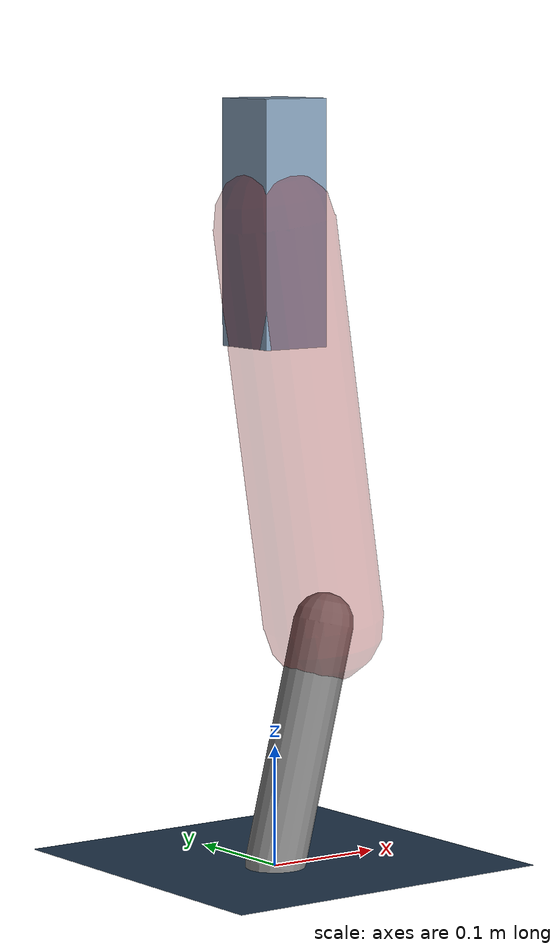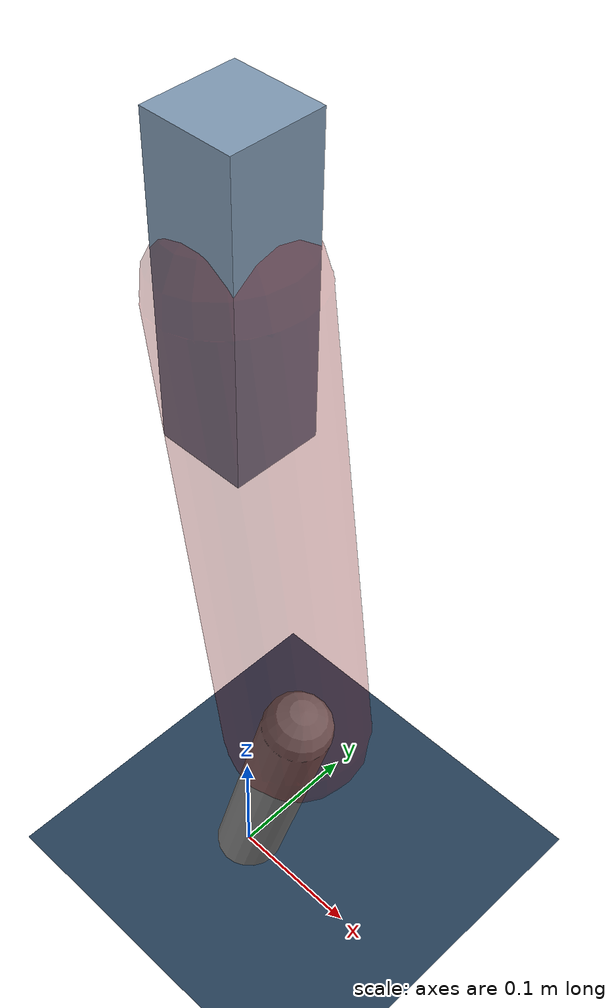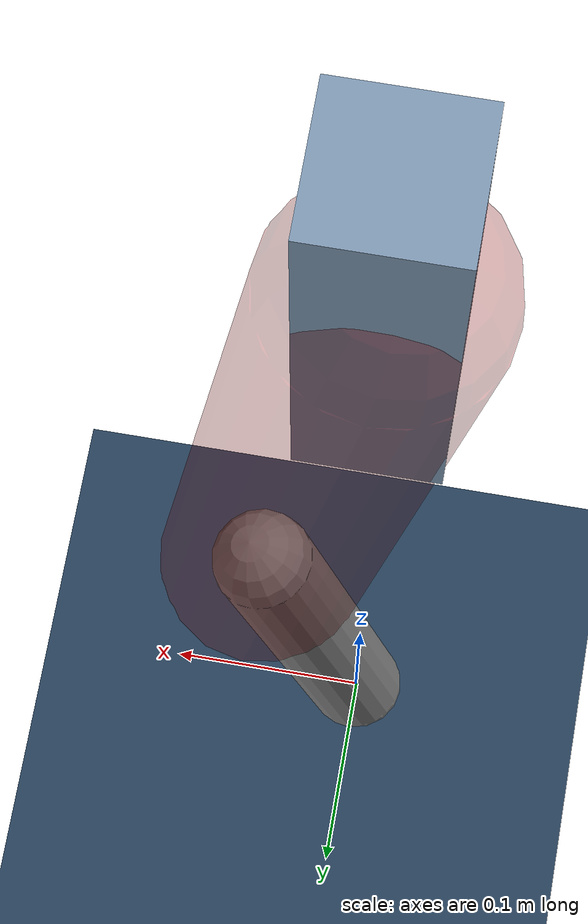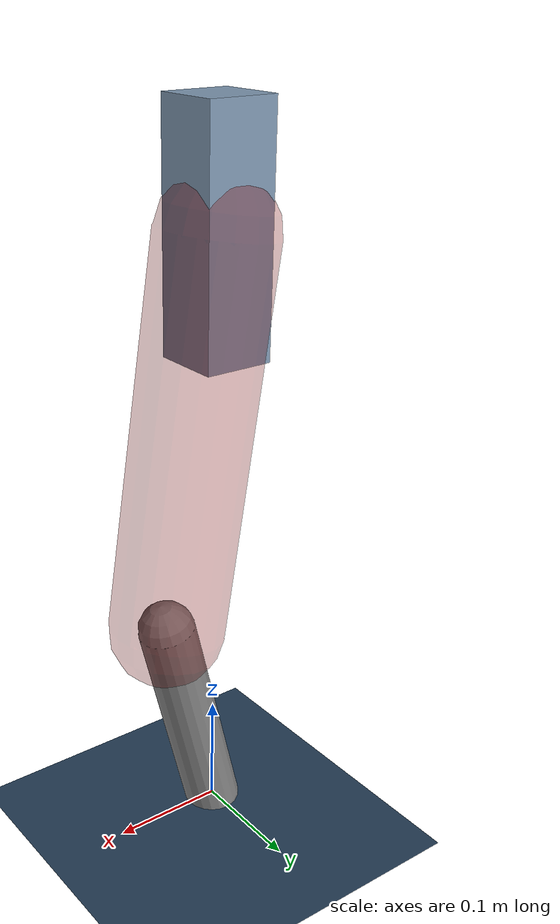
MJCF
<mujoco model="Hopper2D">
	<compiler inertiafromgeom="true" angle="radian" />
	<option timestep="0.001" integrator="implicit" cone="elliptic" solver="Newton" tolerance="1e-10" />

	<default>
		<geom contype="1" conaffinity="1" condim="3" friction="2 0.005 0.0001" solref="0.005 1" />
		<joint limited="true" damping="0.1" />
	</default>

	<asset>
		<texture name="skybox" type="skybox" builtin="gradient" rgb1=".4 .6 .8" rgb2="0 0 0" width="800" height="800" />
		<texture name="grid" type="2d" builtin="checker" rgb1=".1 .2 .3" rgb2=".2 .3 .4" width="300" height="300" mark="edge" markrgb=".2 .3 .4" />
		<material name="ground" texture="grid" texrepeat="1 1" texuniform="true" reflectance="0.1" />
		<material name="leg" rgba="0.5 0.6 0.7 1" />
	</asset>

	<worldbody>

		<geom name="floor" type="plane" size="5 5 0.25" material="ground" />

		<light directional="false" diffuse="0.8 0.8 0.8" specular="0.3 0.3 0.3" pos="0 0 2" dir="0 0 -1" />
		<light mode="targetbodycom" target="base" directional="false" diffuse="0.8 0.8 0.8" specular="0.3 0.3 0.3" pos="0 0 2" dir="0 0 -1" />

		<camera name="fixed" pos="0 -2 1" xyaxes="1 0 0 0 0 1" />
		<camera name="tracking" mode="trackcom" pos="0 -3 1" />

		<body name="root" pos="0 0 0.5289879258678842">
			<joint name="slide_x" type="slide" axis="1 0 0" range="-100 100" />
			<joint name="slide_z" type="slide" axis="0 0 1" range="0 10" />

			<body name="base" pos="0 0 0">
				<geom name="torso" type="box" size="0.03 0.03 0.1" mass="2.6399999999999997" material="leg" />

				<body name="link1" pos="0 0 0" euler="0 1.4205926744353552 0">
					<joint type="hinge" axis="0 -1 0" pos="0 0 0" name="hinge1" limited="true" range="-3.14 3.14" stiffness="0" damping="0.1" />
					<geom name="thigh" type="capsule" fromto="0 0 0 0.334661225172683 0 0" size="0.05" rgba="0.5 0 0 0.3" mass="1.0837514304835123" />

					<body name="link2" pos="0.334661225172683 0 0" euler="0 0.3978167083899609 0">
						<joint type="hinge" axis="0 -1 0" pos="0 0 0" name="hinge2" limited="true" range="-3.14 3.14" stiffness="0" damping="0.1" />
						<geom name="shank" type="capsule" fromto="0 0 0 0.20432670069520126 0 0" size="0.025" mass="0.40456136055616104" />

					</body>
				</body>
			</body>
		</body>
	</worldbody>

	<actuator>
		<motor name="torque1" joint="hinge1" ctrlrange="-62.35813577956823 62.35813577956823" ctrllimited="true" gear="1" />
		<motor name="torque2" joint="hinge2" ctrlrange="-63.28907709371434 63.28907709371434" ctrllimited="true" gear="1" />
	</actuator>
</mujoco>
